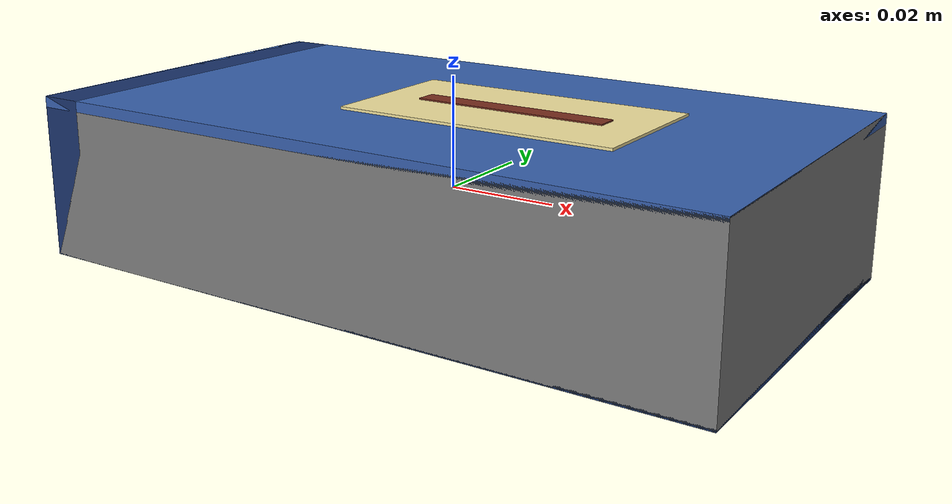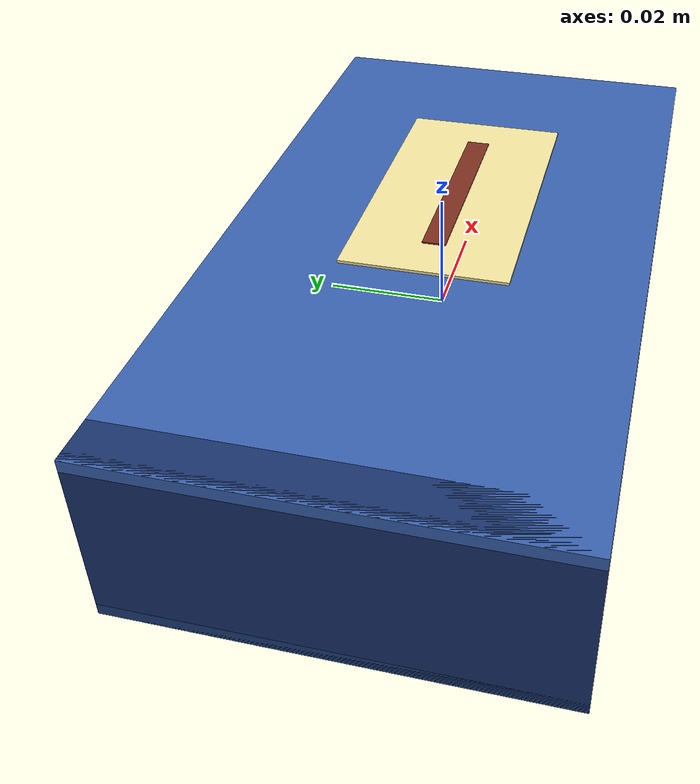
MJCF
<mujoco model="vla82_vla82_016">
  <compiler angle="radian"/>
  <asset>
    <texture name="source_texture" type="2d" file="source_texture.png"/>
    <material name="source_material" texture="source_texture" rgba="1 1 1 1"/>
  </asset>
  <default>
    <default class="visual"><geom contype="0" conaffinity="0" group="1"/></default>
    <default class="collision"><geom contype="1" conaffinity="1" group="0" density="300" friction="0.65 0.006 0.0002" solref="0.02 1" solimp="0.9 0.95 0.001"/></default>
    <default class="region"><geom contype="0" conaffinity="0" group="1" rgba="0 1 0 0" mass="0"/></default>
  </default>
  <worldbody><body><body name="object">
    <geom name="book_pages" class="visual" type="box" pos="0.002 0 0" size="0.060000 0.032000 0.012000" rgba="0.94 0.88 0.72 1"/>
    <geom name="book_cover_top" class="visual" type="box" pos="0 0 0.014000" size="0.065000 0.035000 0.001" rgba="0.22 0.38 0.68 1"/>
    <geom name="book_cover_bottom" class="visual" type="box" pos="0 0 -0.014000" size="0.065000 0.035000 0.001" rgba="0.12 0.24 0.48 1"/>
    <geom name="book_spine" class="visual" type="box" pos="-0.061000 0 0" size="0.004 0.035000 0.015000" rgba="0.10 0.20 0.42 1"/>
    <geom name="book_title_label" class="visual" type="box" pos="0.012 0 0.015250" size="0.026 0.014 0.00025" rgba="0.95 0.89 0.62 1"/>
    <geom name="book_title_bar" class="visual" type="box" pos="0.012 0 0.015550" size="0.018 0.002 0.00020" rgba="0.48 0.18 0.12 1"/>
    <geom name="collision" class="collision" type="box" size="0.065000 0.035000 0.015000"/>
    <geom name="reg_bbox" class="region" type="box" pos="0 0 0" size="0.065000 0.035000 0.015000"/>
  </body></body></worldbody>
  <actuator/>
</mujoco>
